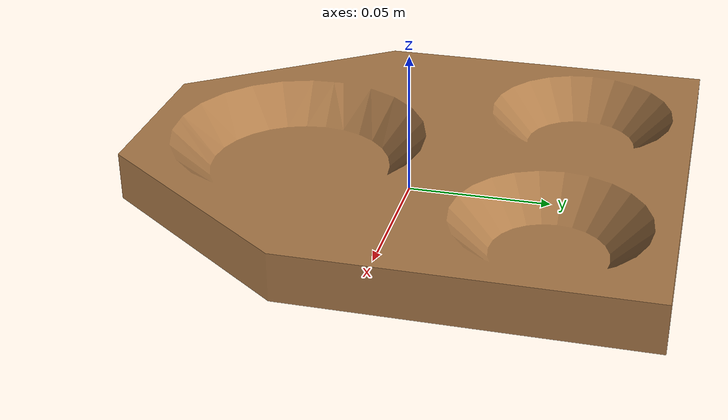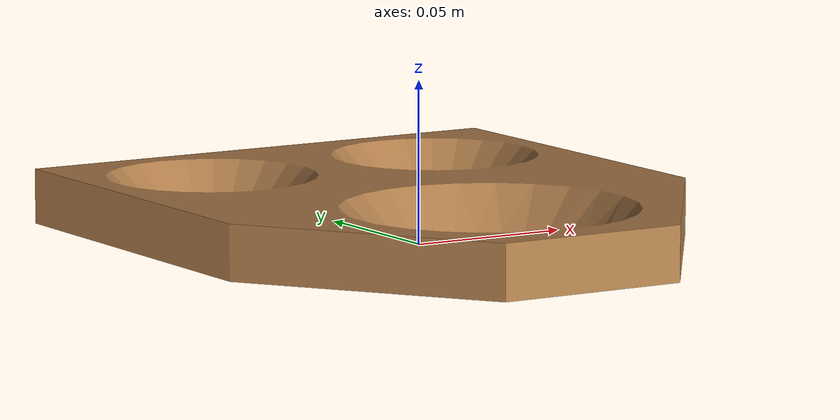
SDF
<?xml version="1.0" encoding="UTF-8"?>
<sdf version="1.5">
   <model name="sku_kit_m2l1_vessel">
           <link name="link1">
                <collision name="collision1">
                    <pose frame="">0 0 0 0 0 0</pose>
                    <geometry>
                        <mesh>
                            <scale>0.0254 0.0254 0.0254</scale>
                            <uri>model://gear_support/meshes/newKitTray_1Large_2Medium_Centered_ZeroZmin.stl</uri>
                        </mesh>
                    </geometry>
                    <max_contacts>10</max_contacts>
                    <surface>1
                        <contact>
                            <ode />
                        </contact>
                        <bounce />
                        <friction>
                            <torsional>
                                <ode />
                            </torsional>
                            <ode />
                        </friction>
                    </surface>
                </collision>
                <visual name="visual1">
                    <pose frame="">0 0 0 0 0 0</pose>
                    <geometry>
                        <mesh>
                            <scale>0.0254 0.0254 0.0254</scale>
                            <uri>model://gear_support/meshes/newKitTray_1Large_2Medium_Centered_ZeroZmin.stl</uri>
                        </mesh>
                    </geometry>
                    <material>
                        <script>
                            <name>Gazebo/Wood</name>
                            <uri>__default__</uri>
                        </script>
                    </material>
                </visual>
                <inertial>
                    <mass>0.39</mass>
                    <inertia>
                        <ixx>8.54977215e+01</ixx>
                        <ixy>5.18963385e-03</ixy>
                        <ixz>-6.49974690e-05</ixz>
                        <iyy>7.01009727e+01</iyy>
                        <iyz>-7.13569718e-02</iyz>
                        <izz>1.54056453e+02</izz>
                    </inertia>
                </inertial>
                <self_collide>0</self_collide>
                <kinematic>0</kinematic>
                <gravity>1</gravity>
            </link>
   </model>
</sdf>
